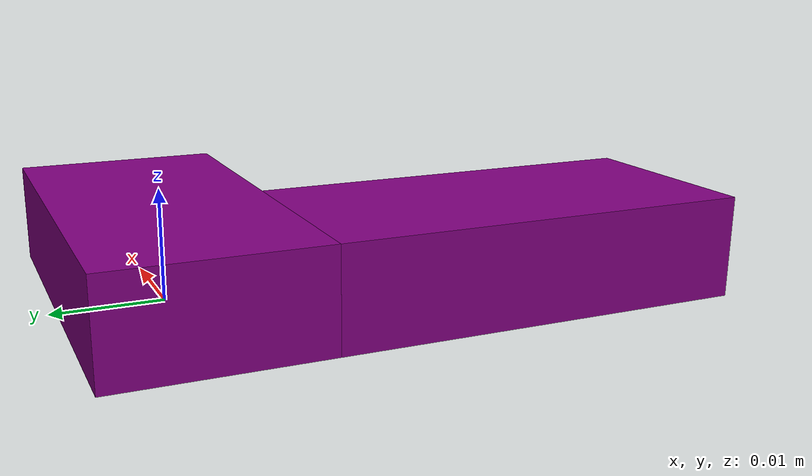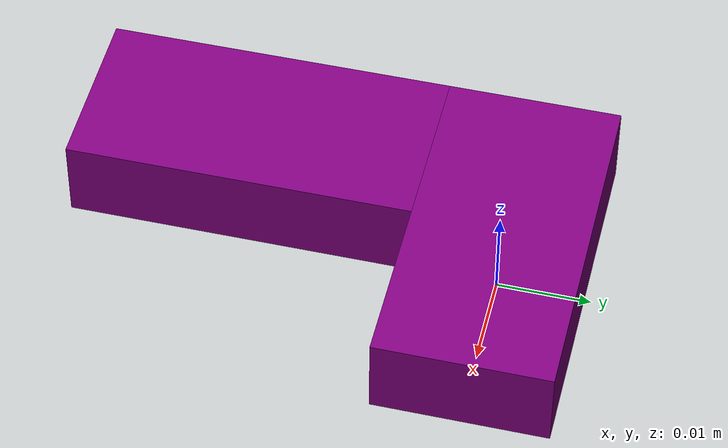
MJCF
<mujoco>
  <compiler angle="radian" autolimits="true"/>
  <worldbody>
    <geom type="box" size="0.0185 0.00925 0.0045" pos="0 0 0.0045" rgba="0.502 0 0.502 1" density="1000"/>
    <geom type="box" size="0.00925 0.0185 0.0045" pos="-0.00925 -0.02775 0.0045" rgba="0.502 0 0.502 1" density="1000"/>
  </worldbody>
</mujoco>
